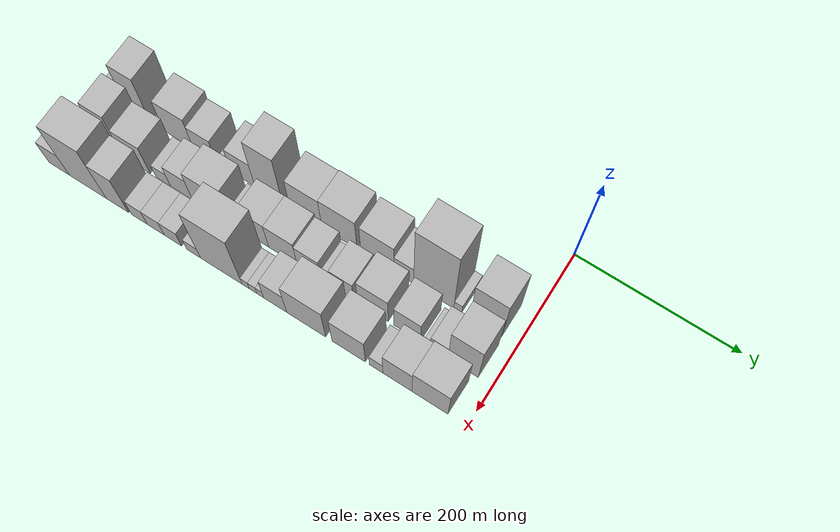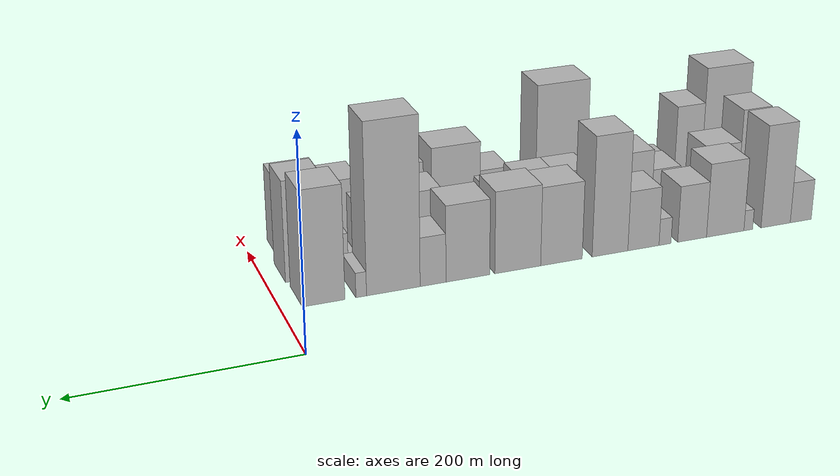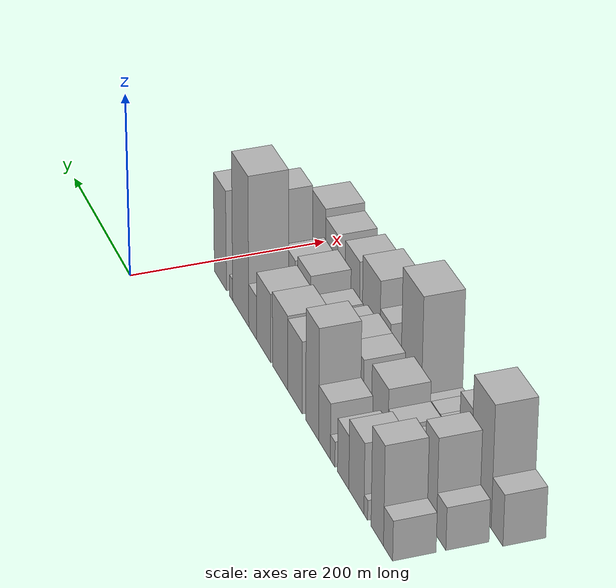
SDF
<sdf version="1.6">
 <world name="default">
  <model name="building_1">
   <static>1</static>
   <pose>100.0000 -514.4406 0 0.000000 0.000000 0.000000</pose>
   <link name="link">
    <pose>0 0 21.00 0 0 0</pose>
    <collision name="collision"><geometry><box><size>40.0000 23.1189 42.0000</size></box></geometry></collision>
    <visual name="visual">
     <cast_shadows>0</cast_shadows>
     <geometry><box><size>40.0000 23.1189 42.0000</size></box></geometry>
     <material>
      <script>
       <uri>model://HANNAS_wall/materials/scripts</uri>
       <uri>model://HANNAS_wall/materials/textures</uri>
       <name>vrc/HANNAS_wall</name>
      </script>
     </material>
    </visual>
   </link>
  </model>
  <model name="building_2">
   <static>1</static>
   <pose>100.0000 -486.9206 0 0.000000 0.000000 0.000000</pose>
   <link name="link">
    <pose>0 0 52.50 0 0 0</pose>
    <collision name="collision"><geometry><box><size>40.0000 31.9210 105.0000</size></box></geometry></collision>
    <visual name="visual">
     <cast_shadows>0</cast_shadows>
     <geometry><box><size>40.0000 31.9210 105.0000</size></box></geometry>
     <material>
      <script>
       <uri>model://HANNAS_wall/materials/scripts</uri>
       <uri>model://HANNAS_wall/materials/textures</uri>
       <name>vrc/HANNAS_wall</name>
      </script>
     </material>
    </visual>
   </link>
  </model>
  <model name="building_3">
   <static>1</static>
   <pose>100.0000 -457.2206 0 0.000000 0.000000 0.000000</pose>
   <link name="link">
    <pose>0 0 10.50 0 0 0</pose>
    <collision name="collision"><geometry><box><size>40.0000 9.4788 21.0000</size></box></geometry></collision>
    <visual name="visual">
     <cast_shadows>0</cast_shadows>
     <geometry><box><size>40.0000 9.4788 21.0000</size></box></geometry>
     <material>
      <script>
       <uri>model://HANNAS_wall/materials/scripts</uri>
       <uri>model://HANNAS_wall/materials/textures</uri>
       <name>vrc/HANNAS_wall</name>
      </script>
     </material>
    </visual>
   </link>
  </model>
  <model name="building_4">
   <static>1</static>
   <pose>100.0000 -432.5442 0 0.000000 0.000000 0.000000</pose>
   <link name="link">
    <pose>0 0 37.50 0 0 0</pose>
    <collision name="collision"><geometry><box><size>40.0000 39.8741 75.0000</size></box></geometry></collision>
    <visual name="visual">
     <cast_shadows>0</cast_shadows>
     <geometry><box><size>40.0000 39.8741 75.0000</size></box></geometry>
     <material>
      <script>
       <uri>model://HANNAS_wall/materials/scripts</uri>
       <uri>model://HANNAS_wall/materials/textures</uri>
       <name>vrc/HANNAS_wall</name>
      </script>
     </material>
    </visual>
   </link>
  </model>
  <model name="building_5">
   <static>1</static>
   <pose>100.0000 -397.4626 0 0.000000 0.000000 0.000000</pose>
   <link name="link">
    <pose>0 0 28.50 0 0 0</pose>
    <collision name="collision"><geometry><box><size>40.0000 30.2890 57.0000</size></box></geometry></collision>
    <visual name="visual">
     <cast_shadows>0</cast_shadows>
     <geometry><box><size>40.0000 30.2890 57.0000</size></box></geometry>
     <material>
      <script>
       <uri>model://HANNAS_wall/materials/scripts</uri>
       <uri>model://HANNAS_wall/materials/textures</uri>
       <name>vrc/HANNAS_wall</name>
      </script>
     </material>
    </visual>
   </link>
  </model>
  <model name="building_6">
   <static>1</static>
   <pose>100.0000 -369.0856 0 0.000000 0.000000 0.000000</pose>
   <link name="link">
    <pose>0 0 13.50 0 0 0</pose>
    <collision name="collision"><geometry><box><size>40.0000 12.4650 27.0000</size></box></geometry></collision>
    <visual name="visual">
     <cast_shadows>0</cast_shadows>
     <geometry><box><size>40.0000 12.4650 27.0000</size></box></geometry>
     <material>
      <script>
       <uri>model://HANNAS_wall/materials/scripts</uri>
       <uri>model://HANNAS_wall/materials/textures</uri>
       <name>vrc/HANNAS_wall</name>
      </script>
     </material>
    </visual>
   </link>
  </model>
  <model name="building_7">
   <static>1</static>
   <pose>100.0000 -346.7945 0 0.000000 0.000000 0.000000</pose>
   <link name="link">
    <pose>0 0 30.00 0 0 0</pose>
    <collision name="collision"><geometry><box><size>40.0000 32.1171 60.0000</size></box></geometry></collision>
    <visual name="visual">
     <cast_shadows>0</cast_shadows>
     <geometry><box><size>40.0000 32.1171 60.0000</size></box></geometry>
     <material>
      <script>
       <uri>model://HANNAS_wall/materials/scripts</uri>
       <uri>model://HANNAS_wall/materials/textures</uri>
       <name>vrc/HANNAS_wall</name>
      </script>
     </material>
    </visual>
   </link>
  </model>
  <model name="building_8">
   <static>1</static>
   <pose>100.0000 -312.5930 0 0.000000 0.000000 0.000000</pose>
   <link name="link">
    <pose>0 0 60.00 0 0 0</pose>
    <collision name="collision"><geometry><box><size>40.0000 36.2858 120.0000</size></box></geometry></collision>
    <visual name="visual">
     <cast_shadows>0</cast_shadows>
     <geometry><box><size>40.0000 36.2858 120.0000</size></box></geometry>
     <material>
      <script>
       <uri>model://HANNAS_wall/materials/scripts</uri>
       <uri>model://HANNAS_wall/materials/textures</uri>
       <name>vrc/HANNAS_wall</name>
      </script>
     </material>
    </visual>
   </link>
  </model>
  <model name="building_9">
   <static>1</static>
   <pose>100.0000 -263.7543 0 0.000000 0.000000 0.000000</pose>
   <link name="link">
    <pose>0 0 39.00 0 0 0</pose>
    <collision name="collision"><geometry><box><size>40.0000 41.3915 78.0000</size></box></geometry></collision>
    <visual name="visual">
     <cast_shadows>0</cast_shadows>
     <geometry><box><size>40.0000 41.3915 78.0000</size></box></geometry>
     <material>
      <script>
       <uri>model://HANNAS_wall/materials/scripts</uri>
       <uri>model://HANNAS_wall/materials/textures</uri>
       <name>vrc/HANNAS_wall</name>
      </script>
     </material>
    </visual>
   </link>
  </model>
  <model name="building_10">
   <static>1</static>
   <pose>100.0000 -220.6366 0 0.000000 0.000000 0.000000</pose>
   <link name="link">
    <pose>0 0 40.50 0 0 0</pose>
    <collision name="collision"><geometry><box><size>40.0000 44.8439 81.0000</size></box></geometry></collision>
    <visual name="visual">
     <cast_shadows>0</cast_shadows>
     <geometry><box><size>40.0000 44.8439 81.0000</size></box></geometry>
     <material>
      <script>
       <uri>model://HANNAS_wall/materials/scripts</uri>
       <uri>model://HANNAS_wall/materials/textures</uri>
       <name>vrc/HANNAS_wall</name>
      </script>
     </material>
    </visual>
   </link>
  </model>
  <model name="building_11">
   <static>1</static>
   <pose>100.0000 -172.2574 0 0.000000 0.000000 0.000000</pose>
   <link name="link">
    <pose>0 0 37.50 0 0 0</pose>
    <collision name="collision"><geometry><box><size>40.0000 41.9144 75.0000</size></box></geometry></collision>
    <visual name="visual">
     <cast_shadows>0</cast_shadows>
     <geometry><box><size>40.0000 41.9144 75.0000</size></box></geometry>
     <material>
      <script>
       <uri>model://HANNAS_wall/materials/scripts</uri>
       <uri>model://HANNAS_wall/materials/textures</uri>
       <name>vrc/HANNAS_wall</name>
      </script>
     </material>
    </visual>
   </link>
  </model>
  <model name="building_12">
   <static>1</static>
   <pose>100.0000 -139.1292 0 0.000000 0.000000 0.000000</pose>
   <link name="link">
    <pose>0 0 24.00 0 0 0</pose>
    <collision name="collision"><geometry><box><size>40.0000 24.3419 48.0000</size></box></geometry></collision>
    <visual name="visual">
     <cast_shadows>0</cast_shadows>
     <geometry><box><size>40.0000 24.3419 48.0000</size></box></geometry>
     <material>
      <script>
       <uri>model://HANNAS_wall/materials/scripts</uri>
       <uri>model://HANNAS_wall/materials/textures</uri>
       <name>vrc/HANNAS_wall</name>
      </script>
     </material>
    </visual>
   </link>
  </model>
  <model name="building_13">
   <static>1</static>
   <pose>100.0000 -102.0456 0 0.000000 0.000000 0.000000</pose>
   <link name="link">
    <pose>0 0 82.50 0 0 0</pose>
    <collision name="collision"><geometry><box><size>40.0000 49.8253 165.0000</size></box></geometry></collision>
    <visual name="visual">
     <cast_shadows>0</cast_shadows>
     <geometry><box><size>40.0000 49.8253 165.0000</size></box></geometry>
     <material>
      <script>
       <uri>model://HANNAS_wall/materials/scripts</uri>
       <uri>model://HANNAS_wall/materials/textures</uri>
       <name>vrc/HANNAS_wall</name>
      </script>
     </material>
    </visual>
   </link>
  </model>
  <model name="building_14">
   <static>1</static>
   <pose>100.0000 -72.2656 0 0.000000 0.000000 0.000000</pose>
   <link name="link">
    <pose>0 0 12.00 0 0 0</pose>
    <collision name="collision"><geometry><box><size>40.0000 9.7349 24.0000</size></box></geometry></collision>
    <visual name="visual">
     <cast_shadows>0</cast_shadows>
     <geometry><box><size>40.0000 9.7349 24.0000</size></box></geometry>
     <material>
      <script>
       <uri>model://HANNAS_wall/materials/scripts</uri>
       <uri>model://HANNAS_wall/materials/textures</uri>
       <name>vrc/HANNAS_wall</name>
      </script>
     </material>
    </visual>
   </link>
  </model>
  <model name="building_15">
   <static>1</static>
   <pose>100.0000 -38.1251 0 0.000000 0.000000 0.000000</pose>
   <link name="link">
    <pose>0 0 55.50 0 0 0</pose>
    <collision name="collision"><geometry><box><size>40.0000 38.5460 111.0000</size></box></geometry></collision>
    <visual name="visual">
     <cast_shadows>0</cast_shadows>
     <geometry><box><size>40.0000 38.5460 111.0000</size></box></geometry>
     <material>
      <script>
       <uri>model://HANNAS_wall/materials/scripts</uri>
       <uri>model://HANNAS_wall/materials/textures</uri>
       <name>vrc/HANNAS_wall</name>
      </script>
     </material>
    </visual>
   </link>
  </model>
  <model name="building_29">
   <static>1</static>
   <pose>149.0000 -514.3529 0 0.000000 0.000000 0.000000</pose>
   <link name="link">
    <pose>0 0 22.50 0 0 0</pose>
    <collision name="collision"><geometry><box><size>40.0000 23.2941 45.0000</size></box></geometry></collision>
    <visual name="visual">
     <cast_shadows>0</cast_shadows>
     <geometry><box><size>40.0000 23.2941 45.0000</size></box></geometry>
     <material>
      <script>
       <uri>model://HANNAS_wall/materials/scripts</uri>
       <uri>model://HANNAS_wall/materials/textures</uri>
       <name>vrc/HANNAS_wall</name>
      </script>
     </material>
    </visual>
   </link>
  </model>
  <model name="building_30">
   <static>1</static>
   <pose>149.0000 -487.4000 0 0.000000 0.000000 0.000000</pose>
   <link name="link">
    <pose>0 0 51.00 0 0 0</pose>
    <collision name="collision"><geometry><box><size>40.0000 30.6118 102.0000</size></box></geometry></collision>
    <visual name="visual">
     <cast_shadows>0</cast_shadows>
     <geometry><box><size>40.0000 30.6118 102.0000</size></box></geometry>
     <material>
      <script>
       <uri>model://HANNAS_wall/materials/scripts</uri>
       <uri>model://HANNAS_wall/materials/textures</uri>
       <name>vrc/HANNAS_wall</name>
      </script>
     </material>
    </visual>
   </link>
  </model>
  <model name="building_31">
   <static>1</static>
   <pose>149.0000 -453.6381 0 0.000000 0.000000 0.000000</pose>
   <link name="link">
    <pose>0 0 34.50 0 0 0</pose>
    <collision name="collision"><geometry><box><size>40.0000 36.9121 69.0000</size></box></geometry></collision>
    <visual name="visual">
     <cast_shadows>0</cast_shadows>
     <geometry><box><size>40.0000 36.9121 69.0000</size></box></geometry>
     <material>
      <script>
       <uri>model://HANNAS_wall/materials/scripts</uri>
       <uri>model://HANNAS_wall/materials/textures</uri>
       <name>vrc/HANNAS_wall</name>
      </script>
     </material>
    </visual>
   </link>
  </model>
  <model name="building_32">
   <static>1</static>
   <pose>149.0000 -417.5335 0 0.000000 0.000000 0.000000</pose>
   <link name="link">
    <pose>0 0 16.50 0 0 0</pose>
    <collision name="collision"><geometry><box><size>40.0000 19.2970 33.0000</size></box></geometry></collision>
    <visual name="visual">
     <cast_shadows>0</cast_shadows>
     <geometry><box><size>40.0000 19.2970 33.0000</size></box></geometry>
     <material>
      <script>
       <uri>model://HANNAS_wall/materials/scripts</uri>
       <uri>model://HANNAS_wall/materials/textures</uri>
       <name>vrc/HANNAS_wall</name>
      </script>
     </material>
    </visual>
   </link>
  </model>
  <model name="building_33">
   <static>1</static>
   <pose>149.0000 -393.2824 0 0.000000 0.000000 0.000000</pose>
   <link name="link">
    <pose>0 0 27.00 0 0 0</pose>
    <collision name="collision"><geometry><box><size>40.0000 29.2052 54.0000</size></box></geometry></collision>
    <visual name="visual">
     <cast_shadows>0</cast_shadows>
     <geometry><box><size>40.0000 29.2052 54.0000</size></box></geometry>
     <material>
      <script>
       <uri>model://HANNAS_wall/materials/scripts</uri>
       <uri>model://HANNAS_wall/materials/textures</uri>
       <name>vrc/HANNAS_wall</name>
      </script>
     </material>
    </visual>
   </link>
  </model>
  <model name="building_34">
   <static>1</static>
   <pose>149.0000 -356.8397 0 0.000000 0.000000 0.000000</pose>
   <link name="link">
    <pose>0 0 37.50 0 0 0</pose>
    <collision name="collision"><geometry><box><size>40.0000 43.6803 75.0000</size></box></geometry></collision>
    <visual name="visual">
     <cast_shadows>0</cast_shadows>
     <geometry><box><size>40.0000 43.6803 75.0000</size></box></geometry>
     <material>
      <script>
       <uri>model://HANNAS_wall/materials/scripts</uri>
       <uri>model://HANNAS_wall/materials/textures</uri>
       <name>vrc/HANNAS_wall</name>
      </script>
     </material>
    </visual>
   </link>
  </model>
  <model name="building_35">
   <static>1</static>
   <pose>149.0000 -321.6928 0 0.000000 0.000000 0.000000</pose>
   <link name="link">
    <pose>0 0 15.00 0 0 0</pose>
    <collision name="collision"><geometry><box><size>40.0000 16.6135 30.0000</size></box></geometry></collision>
    <visual name="visual">
     <cast_shadows>0</cast_shadows>
     <geometry><box><size>40.0000 16.6135 30.0000</size></box></geometry>
     <material>
      <script>
       <uri>model://HANNAS_wall/materials/scripts</uri>
       <uri>model://HANNAS_wall/materials/textures</uri>
       <name>vrc/HANNAS_wall</name>
      </script>
     </material>
    </visual>
   </link>
  </model>
  <model name="building_36">
   <static>1</static>
   <pose>149.0000 -295.9708 0 0.000000 0.000000 0.000000</pose>
   <link name="link">
    <pose>0 0 33.00 0 0 0</pose>
    <collision name="collision"><geometry><box><size>40.0000 34.8304 66.0000</size></box></geometry></collision>
    <visual name="visual">
     <cast_shadows>0</cast_shadows>
     <geometry><box><size>40.0000 34.8304 66.0000</size></box></geometry>
     <material>
      <script>
       <uri>model://HANNAS_wall/materials/scripts</uri>
       <uri>model://HANNAS_wall/materials/textures</uri>
       <name>vrc/HANNAS_wall</name>
      </script>
     </material>
    </visual>
   </link>
  </model>
  <model name="building_37">
   <static>1</static>
   <pose>149.0000 -260.1752 0 0.000000 0.000000 0.000000</pose>
   <link name="link">
    <pose>0 0 33.00 0 0 0</pose>
    <collision name="collision"><geometry><box><size>40.0000 36.7608 66.0000</size></box></geometry></collision>
    <visual name="visual">
     <cast_shadows>0</cast_shadows>
     <geometry><box><size>40.0000 36.7608 66.0000</size></box></geometry>
     <material>
      <script>
       <uri>model://HANNAS_wall/materials/scripts</uri>
       <uri>model://HANNAS_wall/materials/textures</uri>
       <name>vrc/HANNAS_wall</name>
      </script>
     </material>
    </visual>
   </link>
  </model>
  <model name="building_38">
   <static>1</static>
   <pose>149.0000 -226.7297 0 0.000000 0.000000 0.000000</pose>
   <link name="link">
    <pose>0 0 28.50 0 0 0</pose>
    <collision name="collision"><geometry><box><size>40.0000 30.1301 57.0000</size></box></geometry></collision>
    <visual name="visual">
     <cast_shadows>0</cast_shadows>
     <geometry><box><size>40.0000 30.1301 57.0000</size></box></geometry>
     <material>
      <script>
       <uri>model://HANNAS_wall/materials/scripts</uri>
       <uri>model://HANNAS_wall/materials/textures</uri>
       <name>vrc/HANNAS_wall</name>
      </script>
     </material>
    </visual>
   </link>
  </model>
  <model name="building_39">
   <static>1</static>
   <pose>149.0000 -205.6202 0 0.000000 0.000000 0.000000</pose>
   <link name="link">
    <pose>0 0 13.50 0 0 0</pose>
    <collision name="collision"><geometry><box><size>40.0000 12.0890 27.0000</size></box></geometry></collision>
    <visual name="visual">
     <cast_shadows>0</cast_shadows>
     <geometry><box><size>40.0000 12.0890 27.0000</size></box></geometry>
     <material>
      <script>
       <uri>model://HANNAS_wall/materials/scripts</uri>
       <uri>model://HANNAS_wall/materials/textures</uri>
       <name>vrc/HANNAS_wall</name>
      </script>
     </material>
    </visual>
   </link>
  </model>
  <model name="building_40">
   <static>1</static>
   <pose>149.0000 -184.9262 0 0.000000 0.000000 0.000000</pose>
   <link name="link">
    <pose>0 0 25.50 0 0 0</pose>
    <collision name="collision"><geometry><box><size>40.0000 29.2991 51.0000</size></box></geometry></collision>
    <visual name="visual">
     <cast_shadows>0</cast_shadows>
     <geometry><box><size>40.0000 29.2991 51.0000</size></box></geometry>
     <material>
      <script>
       <uri>model://HANNAS_wall/materials/scripts</uri>
       <uri>model://HANNAS_wall/materials/textures</uri>
       <name>vrc/HANNAS_wall</name>
      </script>
     </material>
    </visual>
   </link>
  </model>
  <model name="building_41">
   <static>1</static>
   <pose>149.0000 -146.1866 0 0.000000 0.000000 0.000000</pose>
   <link name="link">
    <pose>0 0 34.50 0 0 0</pose>
    <collision name="collision"><geometry><box><size>40.0000 38.1800 69.0000</size></box></geometry></collision>
    <visual name="visual">
     <cast_shadows>0</cast_shadows>
     <geometry><box><size>40.0000 38.1800 69.0000</size></box></geometry>
     <material>
      <script>
       <uri>model://HANNAS_wall/materials/scripts</uri>
       <uri>model://HANNAS_wall/materials/textures</uri>
       <name>vrc/HANNAS_wall</name>
      </script>
     </material>
    </visual>
   </link>
  </model>
  <model name="building_42">
   <static>1</static>
   <pose>149.0000 -103.7100 0 0.000000 0.000000 0.000000</pose>
   <link name="link">
    <pose>0 0 30.00 0 0 0</pose>
    <collision name="collision"><geometry><box><size>40.0000 32.7732 60.0000</size></box></geometry></collision>
    <visual name="visual">
     <cast_shadows>0</cast_shadows>
     <geometry><box><size>40.0000 32.7732 60.0000</size></box></geometry>
     <material>
      <script>
       <uri>model://HANNAS_wall/materials/scripts</uri>
       <uri>model://HANNAS_wall/materials/textures</uri>
       <name>vrc/HANNAS_wall</name>
      </script>
     </material>
    </visual>
   </link>
  </model>
  <model name="building_43">
   <static>1</static>
   <pose>149.0000 -79.4337 0 0.000000 0.000000 0.000000</pose>
   <link name="link">
    <pose>0 0 9.00 0 0 0</pose>
    <collision name="collision"><geometry><box><size>40.0000 7.7794 18.0000</size></box></geometry></collision>
    <visual name="visual">
     <cast_shadows>0</cast_shadows>
     <geometry><box><size>40.0000 7.7794 18.0000</size></box></geometry>
     <material>
      <script>
       <uri>model://HANNAS_wall/materials/scripts</uri>
       <uri>model://HANNAS_wall/materials/textures</uri>
       <name>vrc/HANNAS_wall</name>
      </script>
     </material>
    </visual>
   </link>
  </model>
  <model name="building_44">
   <static>1</static>
   <pose>149.0000 -64.6756 0 0.000000 0.000000 0.000000</pose>
   <link name="link">
    <pose>0 0 19.50 0 0 0</pose>
    <collision name="collision"><geometry><box><size>40.0000 21.7368 39.0000</size></box></geometry></collision>
    <visual name="visual">
     <cast_shadows>0</cast_shadows>
     <geometry><box><size>40.0000 21.7368 39.0000</size></box></geometry>
     <material>
      <script>
       <uri>model://HANNAS_wall/materials/scripts</uri>
       <uri>model://HANNAS_wall/materials/textures</uri>
       <name>vrc/HANNAS_wall</name>
      </script>
     </material>
    </visual>
   </link>
  </model>
  <model name="building_45">
   <static>1</static>
   <pose>149.0000 -35.3966 0 0.000000 0.000000 0.000000</pose>
   <link name="link">
    <pose>0 0 49.50 0 0 0</pose>
    <collision name="collision"><geometry><box><size>40.0000 36.8211 99.0000</size></box></geometry></collision>
    <visual name="visual">
     <cast_shadows>0</cast_shadows>
     <geometry><box><size>40.0000 36.8211 99.0000</size></box></geometry>
     <material>
      <script>
       <uri>model://HANNAS_wall/materials/scripts</uri>
       <uri>model://HANNAS_wall/materials/textures</uri>
       <name>vrc/HANNAS_wall</name>
      </script>
     </material>
    </visual>
   </link>
  </model>
  <model name="building_63">
   <static>1</static>
   <pose>198.0000 -521.9266 0 0.000000 0.000000 0.000000</pose>
   <link name="link">
    <pose>0 0 27.00 0 0 0</pose>
    <collision name="collision"><geometry><box><size>40.0000 28.1469 54.0000</size></box></geometry></collision>
    <visual name="visual">
     <cast_shadows>0</cast_shadows>
     <geometry><box><size>40.0000 28.1469 54.0000</size></box></geometry>
     <material>
      <script>
       <uri>model://HANNAS_wall/materials/scripts</uri>
       <uri>model://HANNAS_wall/materials/textures</uri>
       <name>vrc/HANNAS_wall</name>
      </script>
     </material>
    </visual>
   </link>
  </model>
  <model name="building_64">
   <static>1</static>
   <pose>198.0000 -482.7766 0 0.000000 0.000000 0.000000</pose>
   <link name="link">
    <pose>0 0 64.50 0 0 0</pose>
    <collision name="collision"><geometry><box><size>40.0000 50.1530 129.0000</size></box></geometry></collision>
    <visual name="visual">
     <cast_shadows>0</cast_shadows>
     <geometry><box><size>40.0000 50.1530 129.0000</size></box></geometry>
     <material>
      <script>
       <uri>model://HANNAS_wall/materials/scripts</uri>
       <uri>model://HANNAS_wall/materials/textures</uri>
       <name>vrc/HANNAS_wall</name>
      </script>
     </material>
    </visual>
   </link>
  </model>
  <model name="building_65">
   <static>1</static>
   <pose>198.0000 -442.6961 0 0.000000 0.000000 0.000000</pose>
   <link name="link">
    <pose>0 0 46.50 0 0 0</pose>
    <collision name="collision"><geometry><box><size>40.0000 30.0080 93.0000</size></box></geometry></collision>
    <visual name="visual">
     <cast_shadows>0</cast_shadows>
     <geometry><box><size>40.0000 30.0080 93.0000</size></box></geometry>
     <material>
      <script>
       <uri>model://HANNAS_wall/materials/scripts</uri>
       <uri>model://HANNAS_wall/materials/textures</uri>
       <name>vrc/HANNAS_wall</name>
      </script>
     </material>
    </visual>
   </link>
  </model>
  <model name="building_66">
   <static>1</static>
   <pose>198.0000 -413.2618 0 0.000000 0.000000 0.000000</pose>
   <link name="link">
    <pose>0 0 19.50 0 0 0</pose>
    <collision name="collision"><geometry><box><size>40.0000 20.8608 39.0000</size></box></geometry></collision>
    <visual name="visual">
     <cast_shadows>0</cast_shadows>
     <geometry><box><size>40.0000 20.8608 39.0000</size></box></geometry>
     <material>
      <script>
       <uri>model://HANNAS_wall/materials/scripts</uri>
       <uri>model://HANNAS_wall/materials/textures</uri>
       <name>vrc/HANNAS_wall</name>
      </script>
     </material>
    </visual>
   </link>
  </model>
  <model name="building_67">
   <static>1</static>
   <pose>198.0000 -391.4930 0 0.000000 0.000000 0.000000</pose>
   <link name="link">
    <pose>0 0 19.50 0 0 0</pose>
    <collision name="collision"><geometry><box><size>40.0000 22.6769 39.0000</size></box></geometry></collision>
    <visual name="visual">
     <cast_shadows>0</cast_shadows>
     <geometry><box><size>40.0000 22.6769 39.0000</size></box></geometry>
     <material>
      <script>
       <uri>model://HANNAS_wall/materials/scripts</uri>
       <uri>model://HANNAS_wall/materials/textures</uri>
       <name>vrc/HANNAS_wall</name>
      </script>
     </material>
    </visual>
   </link>
  </model>
  <model name="building_68">
   <static>1</static>
   <pose>198.0000 -368.8421 0 0.000000 0.000000 0.000000</pose>
   <link name="link">
    <pose>0 0 19.50 0 0 0</pose>
    <collision name="collision"><geometry><box><size>40.0000 22.6248 39.0000</size></box></geometry></collision>
    <visual name="visual">
     <cast_shadows>0</cast_shadows>
     <geometry><box><size>40.0000 22.6248 39.0000</size></box></geometry>
     <material>
      <script>
       <uri>model://HANNAS_wall/materials/scripts</uri>
       <uri>model://HANNAS_wall/materials/textures</uri>
       <name>vrc/HANNAS_wall</name>
      </script>
     </material>
    </visual>
   </link>
  </model>
  <model name="building_69">
   <static>1</static>
   <pose>198.0000 -341.5746 0 0.000000 0.000000 0.000000</pose>
   <link name="link">
    <pose>0 0 15.00 0 0 0</pose>
    <collision name="collision"><geometry><box><size>40.0000 17.9104 30.0000</size></box></geometry></collision>
    <visual name="visual">
     <cast_shadows>0</cast_shadows>
     <geometry><box><size>40.0000 17.9104 30.0000</size></box></geometry>
     <material>
      <script>
       <uri>model://HANNAS_wall/materials/scripts</uri>
       <uri>model://HANNAS_wall/materials/textures</uri>
       <name>vrc/HANNAS_wall</name>
      </script>
     </material>
    </visual>
   </link>
  </model>
  <model name="building_70">
   <static>1</static>
   <pose>198.0000 -305.7002 0 0.000000 0.000000 0.000000</pose>
   <link name="link">
    <pose>0 0 67.50 0 0 0</pose>
    <collision name="collision"><geometry><box><size>40.0000 53.8383 135.0000</size></box></geometry></collision>
    <visual name="visual">
     <cast_shadows>0</cast_shadows>
     <geometry><box><size>40.0000 53.8383 135.0000</size></box></geometry>
     <material>
      <script>
       <uri>model://HANNAS_wall/materials/scripts</uri>
       <uri>model://HANNAS_wall/materials/textures</uri>
       <name>vrc/HANNAS_wall</name>
      </script>
     </material>
    </visual>
   </link>
  </model>
  <model name="building_71">
   <static>1</static>
   <pose>198.0000 -274.1189 0 0.000000 0.000000 0.000000</pose>
   <link name="link">
    <pose>0 0 10.50 0 0 0</pose>
    <collision name="collision"><geometry><box><size>40.0000 9.3243 21.0000</size></box></geometry></collision>
    <visual name="visual">
     <cast_shadows>0</cast_shadows>
     <geometry><box><size>40.0000 9.3243 21.0000</size></box></geometry>
     <material>
      <script>
       <uri>model://HANNAS_wall/materials/scripts</uri>
       <uri>model://HANNAS_wall/materials/textures</uri>
       <name>vrc/HANNAS_wall</name>
      </script>
     </material>
    </visual>
   </link>
  </model>
  <model name="building_72">
   <static>1</static>
   <pose>198.0000 -264.5427 0 0.000000 0.000000 0.000000</pose>
   <link name="link">
    <pose>0 0 10.50 0 0 0</pose>
    <collision name="collision"><geometry><box><size>40.0000 9.8282 21.0000</size></box></geometry></collision>
    <visual name="visual">
     <cast_shadows>0</cast_shadows>
     <geometry><box><size>40.0000 9.8282 21.0000</size></box></geometry>
     <material>
      <script>
       <uri>model://HANNAS_wall/materials/scripts</uri>
       <uri>model://HANNAS_wall/materials/textures</uri>
       <name>vrc/HANNAS_wall</name>
      </script>
     </material>
    </visual>
   </link>
  </model>
  <model name="building_73">
   <static>1</static>
   <pose>198.0000 -255.3165 0 0.000000 0.000000 0.000000</pose>
   <link name="link">
    <pose>0 0 10.50 0 0 0</pose>
    <collision name="collision"><geometry><box><size>40.0000 8.6241 21.0000</size></box></geometry></collision>
    <visual name="visual">
     <cast_shadows>0</cast_shadows>
     <geometry><box><size>40.0000 8.6241 21.0000</size></box></geometry>
     <material>
      <script>
       <uri>model://HANNAS_wall/materials/scripts</uri>
       <uri>model://HANNAS_wall/materials/textures</uri>
       <name>vrc/HANNAS_wall</name>
      </script>
     </material>
    </visual>
   </link>
  </model>
  <model name="building_74">
   <static>1</static>
   <pose>198.0000 -236.4055 0 0.000000 0.000000 0.000000</pose>
   <link name="link">
    <pose>0 0 28.50 0 0 0</pose>
    <collision name="collision"><geometry><box><size>40.0000 29.1980 57.0000</size></box></geometry></collision>
    <visual name="visual">
     <cast_shadows>0</cast_shadows>
     <geometry><box><size>40.0000 29.1980 57.0000</size></box></geometry>
     <material>
      <script>
       <uri>model://HANNAS_wall/materials/scripts</uri>
       <uri>model://HANNAS_wall/materials/textures</uri>
       <name>vrc/HANNAS_wall</name>
      </script>
     </material>
    </visual>
   </link>
  </model>
  <model name="building_75">
   <static>1</static>
   <pose>198.0000 -197.2957 0 0.000000 0.000000 0.000000</pose>
   <link name="link">
    <pose>0 0 43.50 0 0 0</pose>
    <collision name="collision"><geometry><box><size>40.0000 49.0217 87.0000</size></box></geometry></collision>
    <visual name="visual">
     <cast_shadows>0</cast_shadows>
     <geometry><box><size>40.0000 49.0217 87.0000</size></box></geometry>
     <material>
      <script>
       <uri>model://HANNAS_wall/materials/scripts</uri>
       <uri>model://HANNAS_wall/materials/textures</uri>
       <name>vrc/HANNAS_wall</name>
      </script>
     </material>
    </visual>
   </link>
  </model>
  <model name="building_76">
   <static>1</static>
   <pose>198.0000 -144.1450 0 0.000000 0.000000 0.000000</pose>
   <link name="link">
    <pose>0 0 37.50 0 0 0</pose>
    <collision name="collision"><geometry><box><size>40.0000 41.2797 75.0000</size></box></geometry></collision>
    <visual name="visual">
     <cast_shadows>0</cast_shadows>
     <geometry><box><size>40.0000 41.2797 75.0000</size></box></geometry>
     <material>
      <script>
       <uri>model://HANNAS_wall/materials/scripts</uri>
       <uri>model://HANNAS_wall/materials/textures</uri>
       <name>vrc/HANNAS_wall</name>
      </script>
     </material>
    </visual>
   </link>
  </model>
  <model name="building_77">
   <static>1</static>
   <pose>198.0000 -110.2057 0 0.000000 0.000000 0.000000</pose>
   <link name="link">
    <pose>0 0 16.50 0 0 0</pose>
    <collision name="collision"><geometry><box><size>40.0000 16.5988 33.0000</size></box></geometry></collision>
    <visual name="visual">
     <cast_shadows>0</cast_shadows>
     <geometry><box><size>40.0000 16.5988 33.0000</size></box></geometry>
     <material>
      <script>
       <uri>model://HANNAS_wall/materials/scripts</uri>
       <uri>model://HANNAS_wall/materials/textures</uri>
       <name>vrc/HANNAS_wall</name>
      </script>
     </material>
    </visual>
   </link>
  </model>
  <model name="building_78">
   <static>1</static>
   <pose>198.0000 -84.2086 0 0.000000 0.000000 0.000000</pose>
   <link name="link">
    <pose>0 0 34.50 0 0 0</pose>
    <collision name="collision"><geometry><box><size>40.0000 35.3953 69.0000</size></box></geometry></collision>
    <visual name="visual">
     <cast_shadows>0</cast_shadows>
     <geometry><box><size>40.0000 35.3953 69.0000</size></box></geometry>
     <material>
      <script>
       <uri>model://HANNAS_wall/materials/scripts</uri>
       <uri>model://HANNAS_wall/materials/textures</uri>
       <name>vrc/HANNAS_wall</name>
      </script>
     </material>
    </visual>
   </link>
  </model>
  <model name="building_79">
   <static>1</static>
   <pose>198.0000 -44.8124 0 0.000000 0.000000 0.000000</pose>
   <link name="link">
    <pose>0 0 39.00 0 0 0</pose>
    <collision name="collision"><geometry><box><size>40.0000 43.3971 78.0000</size></box></geometry></collision>
    <visual name="visual">
     <cast_shadows>0</cast_shadows>
     <geometry><box><size>40.0000 43.3971 78.0000</size></box></geometry>
     <material>
      <script>
       <uri>model://HANNAS_wall/materials/scripts</uri>
       <uri>model://HANNAS_wall/materials/textures</uri>
       <name>vrc/HANNAS_wall</name>
      </script>
     </material>
    </visual>
   </link>
  </model>
 </world>
</sdf>
